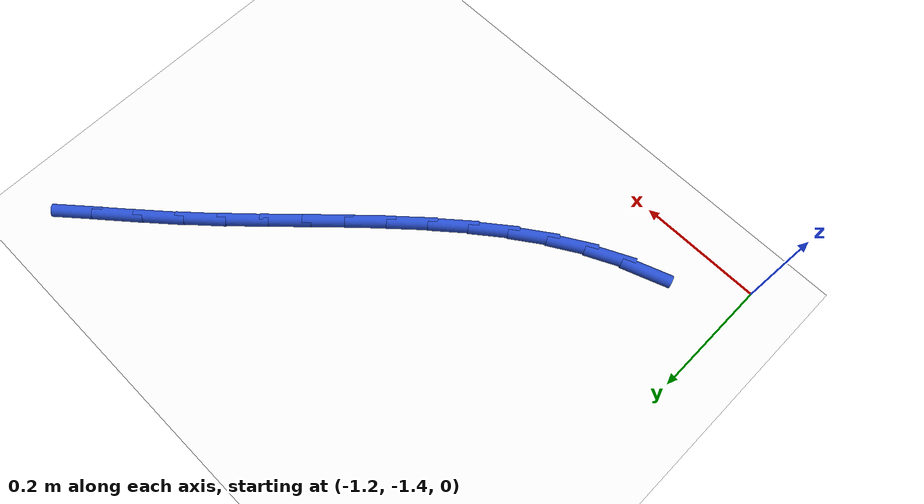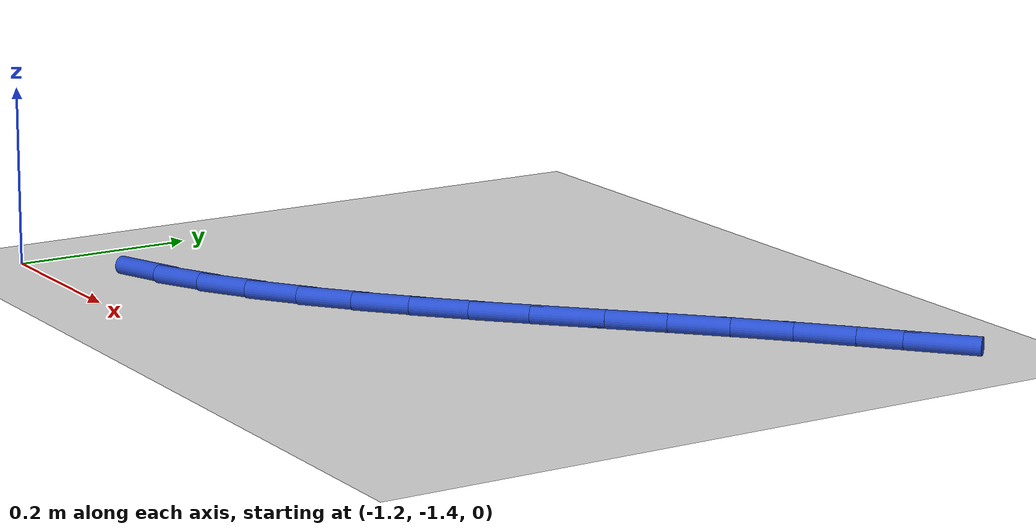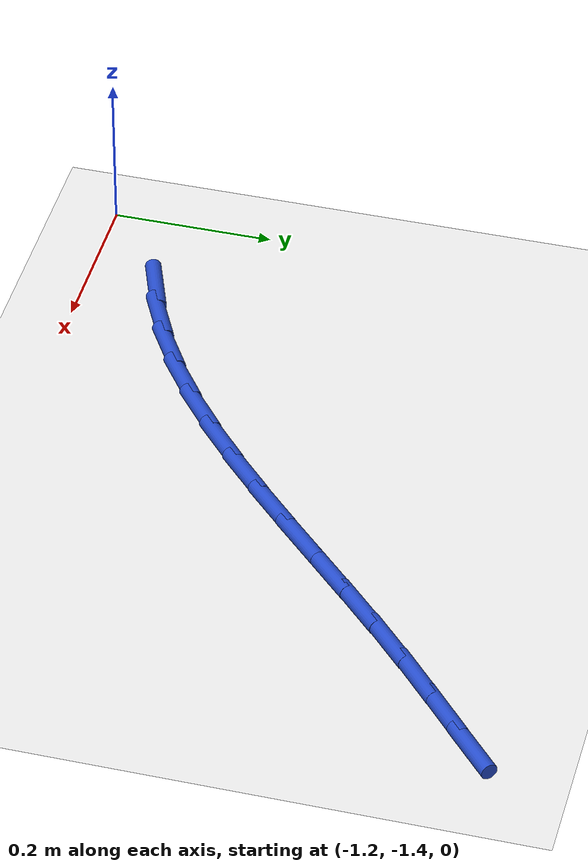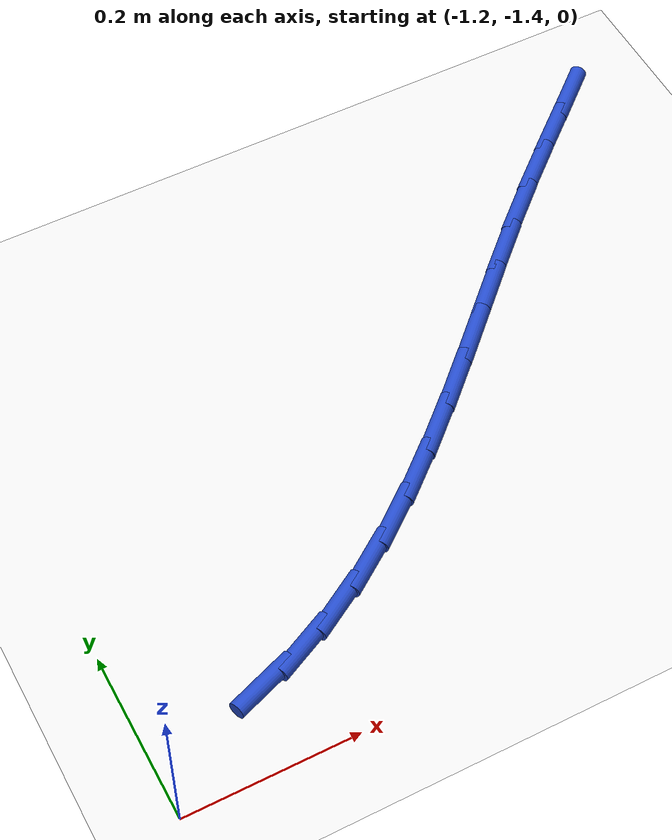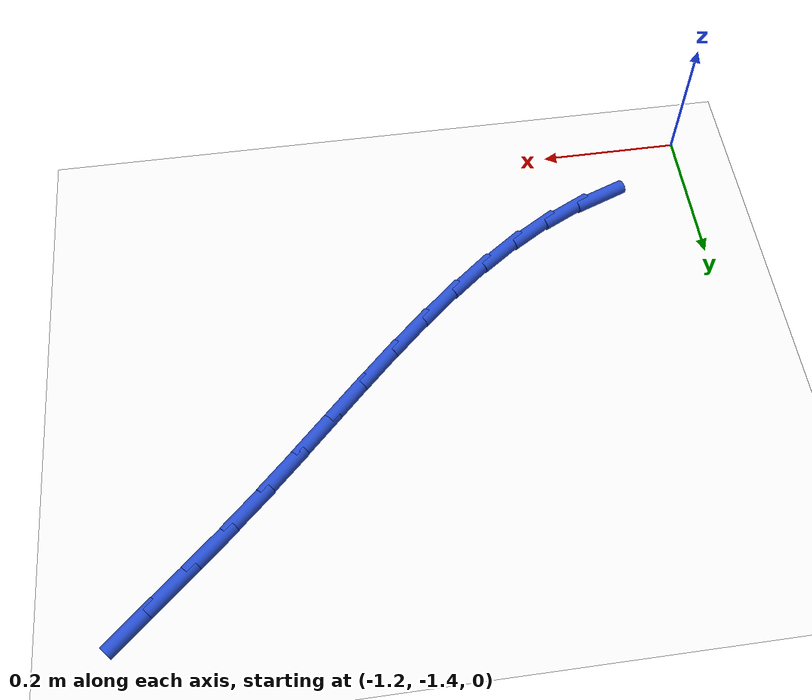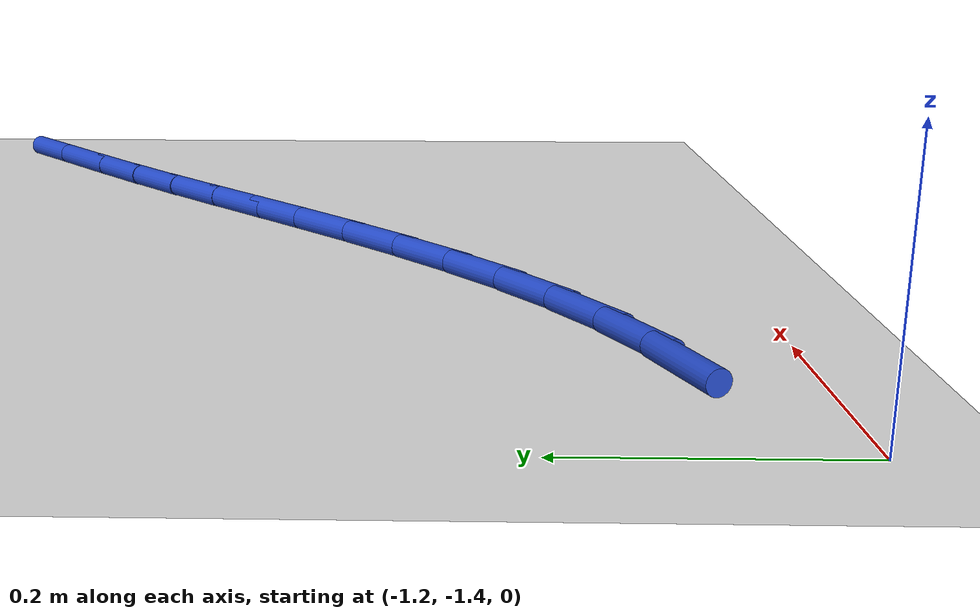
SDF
<sdf version="1.6">
 <world name="default">
  <model name="ground_plane">
   <static>1</static>
   <link name="link">
    <collision name="collision">
     <geometry><plane><normal>0 0 1</normal><size>100 100</size></plane></geometry>
     <surface><friction><ode><mu>100</mu><mu2>50</mu2></ode></friction></surface>
    </collision>
    <visual name="visual">
     <cast_shadows>0</cast_shadows>
     <geometry><plane><normal>0 0 1</normal><size>100 100</size></plane></geometry>
     <material>
      <script><uri>file://media/materials/scripts/gazebo.material</uri><name>Gazebo/WhiteGlow</name></script>
     </material>
    </visual>
   </link>
  </model>
  <model name="line">
   <link name="link_92">
    <pose>-1.0648500591139083 -1.3104016671993632 0.01 0 1.57 0.3571899275027499</pose>
    <collision name="collision">
     <geometry><cylinder><radius>0.01</radius><length>0.08</length></cylinder></geometry>
    </collision>
    <visual name="visual">
     <material>
      <script><name>Gazebo/Blue</name><uri>file://media/materials/scripts/gazebo.material</uri></script>
     </material>
     <geometry><cylinder><radius>0.01</radius><length>0.08</length></cylinder></geometry>
    </visual>
   </link>
   <link name="link_93">
    <pose>-1.0092574728539243 -1.2896546234162627 0.01 0 1.57 0.4597045772822521</pose>
    <collision name="collision">
     <geometry><cylinder><radius>0.01</radius><length>0.08</length></cylinder></geometry>
    </collision>
    <visual name="visual">
     <material>
      <script><name>Gazebo/Blue</name><uri>file://media/materials/scripts/gazebo.material</uri></script>
     </material>
     <geometry><cylinder><radius>0.01</radius><length>0.08</length></cylinder></geometry>
    </visual>
   </link>
   <link name="link_94">
    <pose>-0.9556388270534085 -1.2631090569093828 0.01 0 1.57 0.5470534655228038</pose>
    <collision name="collision">
     <geometry><cylinder><radius>0.01</radius><length>0.08</length></cylinder></geometry>
    </collision>
    <visual name="visual">
     <material>
      <script><name>Gazebo/Blue</name><uri>file://media/materials/scripts/gazebo.material</uri></script>
     </material>
     <geometry><cylinder><radius>0.01</radius><length>0.08</length></cylinder></geometry>
    </visual>
   </link>
   <link name="link_95">
    <pose>-0.9037356468366181 -1.2314969899759476 0.01 0 1.57 0.6191138474883305</pose>
    <collision name="collision">
     <geometry><cylinder><radius>0.01</radius><length>0.08</length></cylinder></geometry>
    </collision>
    <visual name="visual">
     <material>
      <script><name>Gazebo/Blue</name><uri>file://media/materials/scripts/gazebo.material</uri></script>
     </material>
     <geometry><cylinder><radius>0.01</radius><length>0.08</length></cylinder></geometry>
    </visual>
   </link>
   <link name="link_96">
    <pose>-0.8532894573278109 -1.1955504449131815 0.01 0 1.57 0.6766060381346484</pose>
    <collision name="collision">
     <geometry><cylinder><radius>0.01</radius><length>0.08</length></cylinder></geometry>
    </collision>
    <visual name="visual">
     <material>
      <script><name>Gazebo/Blue</name><uri>file://media/materials/scripts/gazebo.material</uri></script>
     </material>
     <geometry><cylinder><radius>0.01</radius><length>0.08</length></cylinder></geometry>
    </visual>
   </link>
   <link name="link_97">
    <pose>-0.8040417836512465 -1.1560014440183106 0.01 0 1.57 0.7205889259516625</pose>
    <collision name="collision">
     <geometry><cylinder><radius>0.01</radius><length>0.08</length></cylinder></geometry>
    </collision>
    <visual name="visual">
     <material>
      <script><name>Gazebo/Blue</name><uri>file://media/materials/scripts/gazebo.material</uri></script>
     </material>
     <geometry><cylinder><radius>0.01</radius><length>0.08</length></cylinder></geometry>
    </visual>
   </link>
   <link name="link_98">
    <pose>-0.7557341509311825 -1.1135820095885582 0.01 0 1.57 0.7521267535425459</pose>
    <collision name="collision">
     <geometry><cylinder><radius>0.01</radius><length>0.08</length></cylinder></geometry>
    </collision>
    <visual name="visual">
     <material>
      <script><name>Gazebo/Blue</name><uri>file://media/materials/scripts/gazebo.material</uri></script>
     </material>
     <geometry><cylinder><radius>0.01</radius><length>0.08</length></cylinder></geometry>
    </visual>
   </link>
   <link name="link_99">
    <pose>-0.708108084291877 -1.0690241639211493 0.01 0 1.57 0.7721030584083226</pose>
    <collision name="collision">
     <geometry><cylinder><radius>0.01</radius><length>0.08</length></cylinder></geometry>
    </collision>
    <visual name="visual">
     <material>
      <script><name>Gazebo/Blue</name><uri>file://media/materials/scripts/gazebo.material</uri></script>
     </material>
     <geometry><cylinder><radius>0.01</radius><length>0.08</length></cylinder></geometry>
    </visual>
   </link>
   <link name="link_100">
    <pose>-0.660905108857588 -1.0230599293133082 0.01 0 1.57 0.7811307808325239</pose>
    <collision name="collision">
     <geometry><cylinder><radius>0.01</radius><length>0.08</length></cylinder></geometry>
    </collision>
    <visual name="visual">
     <material>
      <script><name>Gazebo/Blue</name><uri>file://media/materials/scripts/gazebo.material</uri></script>
     </material>
     <geometry><cylinder><radius>0.01</radius><length>0.08</length></cylinder></geometry>
    </visual>
   </link>
   <link name="link_101">
    <pose>-0.6138667497525748 -0.9764213280622606 0.01 0 1.57 0.7795156846007868</pose>
    <collision name="collision">
     <geometry><cylinder><radius>0.01</radius><length>0.08</length></cylinder></geometry>
    </collision>
    <visual name="visual">
     <material>
      <script><name>Gazebo/Blue</name><uri>file://media/materials/scripts/gazebo.material</uri></script>
     </material>
     <geometry><cylinder><radius>0.01</radius><length>0.08</length></cylinder></geometry>
    </visual>
   </link>
   <link name="link_102">
    <pose>-0.566734532101095 -0.9298403824652308 0.01 0 1.57 0.7672466480230504</pose>
    <collision name="collision">
     <geometry><cylinder><radius>0.01</radius><length>0.08</length></cylinder></geometry>
    </collision>
    <visual name="visual">
     <material>
      <script><name>Gazebo/Blue</name><uri>file://media/materials/scripts/gazebo.material</uri></script>
     </material>
     <geometry><cylinder><radius>0.01</radius><length>0.08</length></cylinder></geometry>
    </visual>
   </link>
   <link name="link_103">
    <pose>-0.5192499810274069 -0.8840491148194431 0.01 0 1.57 0.7448614146779237</pose>
    <collision name="collision">
     <geometry><cylinder><radius>0.01</radius><length>0.08</length></cylinder></geometry>
    </collision>
    <visual name="visual">
     <material>
      <script><name>Gazebo/Blue</name><uri>file://media/materials/scripts/gazebo.material</uri></script>
     </material>
     <geometry><cylinder><radius>0.01</radius><length>0.08</length></cylinder></geometry>
    </visual>
   </link>
   <link name="link_104">
    <pose>-0.47118516661574894 -0.8397312465873088 0.01 0 1.57 0.7249827647773441</pose>
    <collision name="collision">
     <geometry><cylinder><radius>0.01</radius><length>0.08</length></cylinder></geometry>
    </collision>
    <visual name="visual">
     <material>
      <script><name>Gazebo/Blue</name><uri>file://media/materials/scripts/gazebo.material</uri></script>
     </material>
     <geometry><cylinder><radius>0.01</radius><length>0.08</length></cylinder></geometry>
    </visual>
   </link>
   <link name="link_105">
    <pose>-0.4227729785086467 -0.7968418039120285 0.01 0 1.57 0.717903560481858</pose>
    <collision name="collision">
     <geometry><cylinder><radius>0.01</radius><length>0.08</length></cylinder></geometry>
    </collision>
    <visual name="visual">
     <material>
      <script><name>Gazebo/Blue</name><uri>file://media/materials/scripts/gazebo.material</uri></script>
     </material>
     <geometry><cylinder><radius>0.01</radius><length>0.08</length></cylinder></geometry>
    </visual>
   </link>
   <link name="link_106">
    <pose>-0.37460298759216915 -0.7547717918401519 0.01 0 1.57 0.7243253754532892</pose>
    <collision name="collision">
     <geometry><cylinder><radius>0.01</radius><length>0.08</length></cylinder></geometry>
    </collision>
    <visual name="visual">
     <material>
      <script><name>Gazebo/Blue</name><uri>file://media/materials/scripts/gazebo.material</uri></script>
     </material>
     <geometry><cylinder><radius>0.01</radius><length>0.08</length></cylinder></geometry>
    </visual>
   </link>
  </model>
 </world>
</sdf>
